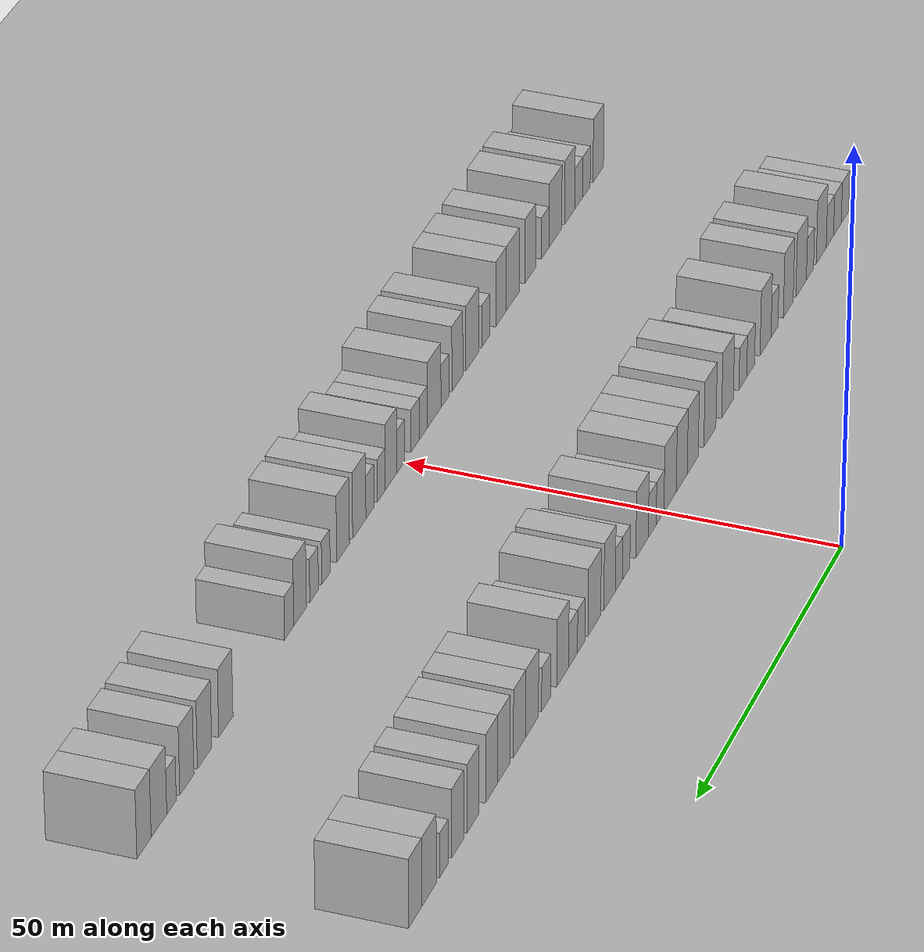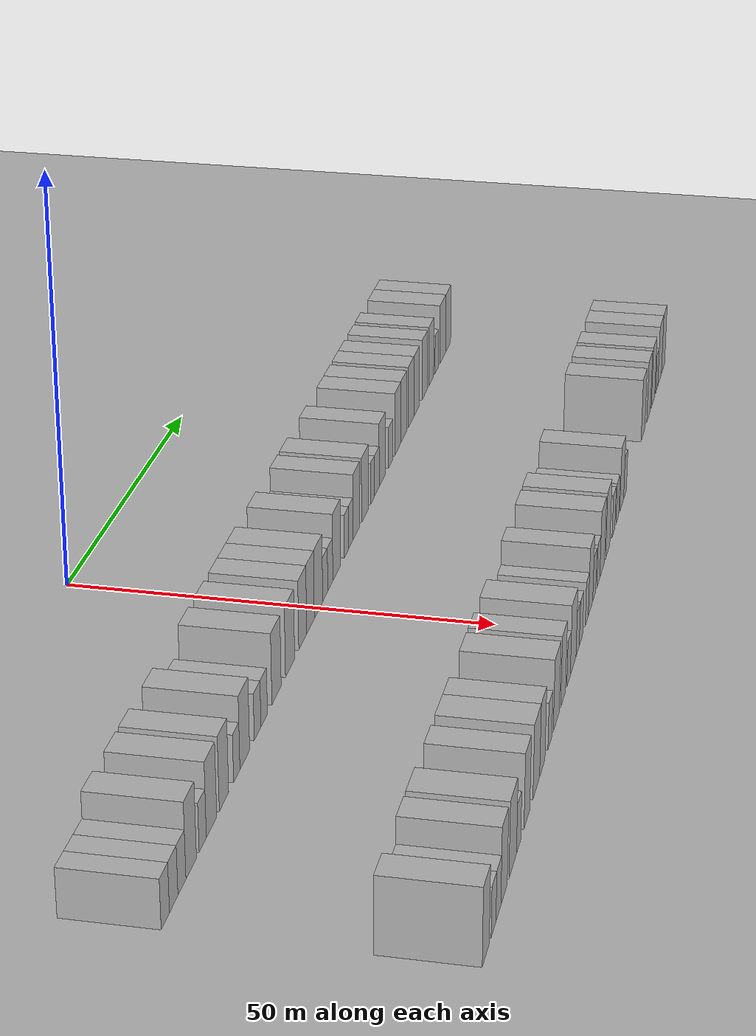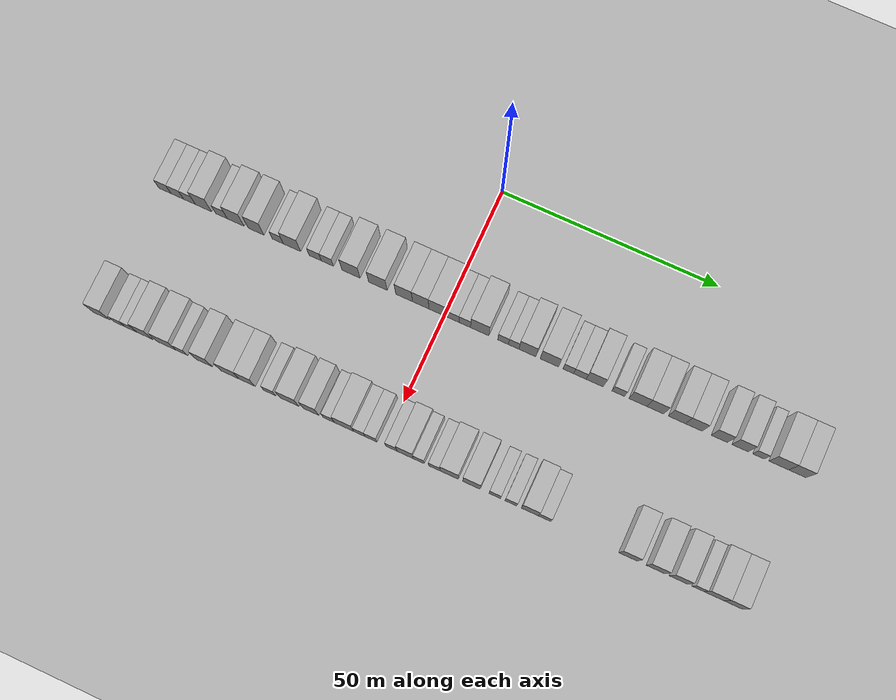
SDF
<sdf version="1.6">
 <world name="default">
  <include><name>ground_plane_1</name><uri>model://HANNAS_ground_plane</uri></include>
  <include>
   <name>ground_plane_2</name>
   <uri>model://HANNAS_ground_plane</uri>
   <pose>100 0 0  0 0 0</pose>
  </include>
  <model name="building_41">
   <static>1</static>
   <pose>25.0000 -65.6387 0 0.000000 0.000000 0.000000</pose>
   <link name="link">
    <pose>0 0 3.00 0 0 0</pose>
    <collision name="collision"><geometry><box><size>10.0000 2.8842 6.0000</size></box></geometry></collision>
    <visual name="visual">
     <cast_shadows>0</cast_shadows>
     <geometry><box><size>10.0000 2.8842 6.0000</size></box></geometry>
     <material>
      <script>
       <uri>model://HANNAS_wall/materials/scripts</uri>
       <uri>model://HANNAS_wall/materials/textures</uri>
       <name>vrc/HANNAS_wall</name>
      </script>
     </material>
    </visual>
   </link>
  </model>
  <model name="building_42">
   <static>1</static>
   <pose>25.0000 -62.7112 0 0.000000 0.000000 0.000000</pose>
   <link name="link">
    <pose>0 0 3.00 0 0 0</pose>
    <collision name="collision"><geometry><box><size>10.0000 2.9709 6.0000</size></box></geometry></collision>
    <visual name="visual">
     <cast_shadows>0</cast_shadows>
     <geometry><box><size>10.0000 2.9709 6.0000</size></box></geometry>
     <material>
      <script>
       <uri>model://HANNAS_wall/materials/scripts</uri>
       <uri>model://HANNAS_wall/materials/textures</uri>
       <name>vrc/HANNAS_wall</name>
      </script>
     </material>
    </visual>
   </link>
  </model>
  <model name="building_43">
   <static>1</static>
   <pose>25.0000 -59.8007 0 0.000000 0.000000 0.000000</pose>
   <link name="link">
    <pose>0 0 3.00 0 0 0</pose>
    <collision name="collision"><geometry><box><size>10.0000 2.8501 6.0000</size></box></geometry></collision>
    <visual name="visual">
     <cast_shadows>0</cast_shadows>
     <geometry><box><size>10.0000 2.8501 6.0000</size></box></geometry>
     <material>
      <script>
       <uri>model://HANNAS_wall/materials/scripts</uri>
       <uri>model://HANNAS_wall/materials/textures</uri>
       <name>vrc/HANNAS_wall</name>
      </script>
     </material>
    </visual>
   </link>
  </model>
  <model name="building_44">
   <static>1</static>
   <pose>25.0000 -56.4494 0 0.000000 0.000000 0.000000</pose>
   <link name="link">
    <pose>0 0 4.50 0 0 0</pose>
    <collision name="collision"><geometry><box><size>10.0000 3.8525 9.0000</size></box></geometry></collision>
    <visual name="visual">
     <cast_shadows>0</cast_shadows>
     <geometry><box><size>10.0000 3.8525 9.0000</size></box></geometry>
     <material>
      <script>
       <uri>model://HANNAS_wall/materials/scripts</uri>
       <uri>model://HANNAS_wall/materials/textures</uri>
       <name>vrc/HANNAS_wall</name>
      </script>
     </material>
    </visual>
   </link>
  </model>
  <model name="building_45">
   <static>1</static>
   <pose>25.0000 -52.1602 0 0.000000 0.000000 0.000000</pose>
   <link name="link">
    <pose>0 0 3.00 0 0 0</pose>
    <collision name="collision"><geometry><box><size>10.0000 2.7258 6.0000</size></box></geometry></collision>
    <visual name="visual">
     <cast_shadows>0</cast_shadows>
     <geometry><box><size>10.0000 2.7258 6.0000</size></box></geometry>
     <material>
      <script>
       <uri>model://HANNAS_wall/materials/scripts</uri>
       <uri>model://HANNAS_wall/materials/textures</uri>
       <name>vrc/HANNAS_wall</name>
      </script>
     </material>
    </visual>
   </link>
  </model>
  <model name="building_46">
   <static>1</static>
   <pose>25.0000 -48.8019 0 0.000000 0.000000 0.000000</pose>
   <link name="link">
    <pose>0 0 4.50 0 0 0</pose>
    <collision name="collision"><geometry><box><size>10.0000 3.9910 9.0000</size></box></geometry></collision>
    <visual name="visual">
     <cast_shadows>0</cast_shadows>
     <geometry><box><size>10.0000 3.9910 9.0000</size></box></geometry>
     <material>
      <script>
       <uri>model://HANNAS_wall/materials/scripts</uri>
       <uri>model://HANNAS_wall/materials/textures</uri>
       <name>vrc/HANNAS_wall</name>
      </script>
     </material>
    </visual>
   </link>
  </model>
  <model name="building_47">
   <static>1</static>
   <pose>25.0000 -43.9524 0 0.000000 0.000000 0.000000</pose>
   <link name="link">
    <pose>0 0 4.50 0 0 0</pose>
    <collision name="collision"><geometry><box><size>10.0000 3.7080 9.0000</size></box></geometry></collision>
    <visual name="visual">
     <cast_shadows>0</cast_shadows>
     <geometry><box><size>10.0000 3.7080 9.0000</size></box></geometry>
     <material>
      <script>
       <uri>model://HANNAS_wall/materials/scripts</uri>
       <uri>model://HANNAS_wall/materials/textures</uri>
       <name>vrc/HANNAS_wall</name>
      </script>
     </material>
    </visual>
   </link>
  </model>
  <model name="building_48">
   <static>1</static>
   <pose>25.0000 -38.8013 0 0.000000 0.000000 0.000000</pose>
   <link name="link">
    <pose>0 0 3.00 0 0 0</pose>
    <collision name="collision"><geometry><box><size>10.0000 2.5941 6.0000</size></box></geometry></collision>
    <visual name="visual">
     <cast_shadows>0</cast_shadows>
     <geometry><box><size>10.0000 2.5941 6.0000</size></box></geometry>
     <material>
      <script>
       <uri>model://HANNAS_wall/materials/scripts</uri>
       <uri>model://HANNAS_wall/materials/textures</uri>
       <name>vrc/HANNAS_wall</name>
      </script>
     </material>
    </visual>
   </link>
  </model>
  <model name="building_49">
   <static>1</static>
   <pose>25.0000 -35.4844 0 0.000000 0.000000 0.000000</pose>
   <link name="link">
    <pose>0 0 4.50 0 0 0</pose>
    <collision name="collision"><geometry><box><size>10.0000 4.0397 9.0000</size></box></geometry></collision>
    <visual name="visual">
     <cast_shadows>0</cast_shadows>
     <geometry><box><size>10.0000 4.0397 9.0000</size></box></geometry>
     <material>
      <script>
       <uri>model://HANNAS_wall/materials/scripts</uri>
       <uri>model://HANNAS_wall/materials/textures</uri>
       <name>vrc/HANNAS_wall</name>
      </script>
     </material>
    </visual>
   </link>
  </model>
  <model name="building_50">
   <static>1</static>
   <pose>25.0000 -30.0270 0 0.000000 0.000000 0.000000</pose>
   <link name="link">
    <pose>0 0 3.00 0 0 0</pose>
    <collision name="collision"><geometry><box><size>10.0000 2.8750 6.0000</size></box></geometry></collision>
    <visual name="visual">
     <cast_shadows>0</cast_shadows>
     <geometry><box><size>10.0000 2.8750 6.0000</size></box></geometry>
     <material>
      <script>
       <uri>model://HANNAS_wall/materials/scripts</uri>
       <uri>model://HANNAS_wall/materials/textures</uri>
       <name>vrc/HANNAS_wall</name>
      </script>
     </material>
    </visual>
   </link>
  </model>
  <model name="building_51">
   <static>1</static>
   <pose>25.0000 -27.1659 0 0.000000 0.000000 0.000000</pose>
   <link name="link">
    <pose>0 0 3.00 0 0 0</pose>
    <collision name="collision"><geometry><box><size>10.0000 2.8471 6.0000</size></box></geometry></collision>
    <visual name="visual">
     <cast_shadows>0</cast_shadows>
     <geometry><box><size>10.0000 2.8471 6.0000</size></box></geometry>
     <material>
      <script>
       <uri>model://HANNAS_wall/materials/scripts</uri>
       <uri>model://HANNAS_wall/materials/textures</uri>
       <name>vrc/HANNAS_wall</name>
      </script>
     </material>
    </visual>
   </link>
  </model>
  <model name="building_52">
   <static>1</static>
   <pose>25.0000 -21.6329 0 0.000000 0.000000 0.000000</pose>
   <link name="link">
    <pose>0 0 4.50 0 0 0</pose>
    <collision name="collision"><geometry><box><size>10.0000 4.2190 9.0000</size></box></geometry></collision>
    <visual name="visual">
     <cast_shadows>0</cast_shadows>
     <geometry><box><size>10.0000 4.2190 9.0000</size></box></geometry>
     <material>
      <script>
       <uri>model://HANNAS_wall/materials/scripts</uri>
       <uri>model://HANNAS_wall/materials/textures</uri>
       <name>vrc/HANNAS_wall</name>
      </script>
     </material>
    </visual>
   </link>
  </model>
  <model name="building_53">
   <static>1</static>
   <pose>25.0000 -15.3646 0 0.000000 0.000000 0.000000</pose>
   <link name="link">
    <pose>0 0 4.50 0 0 0</pose>
    <collision name="collision"><geometry><box><size>10.0000 4.3175 9.0000</size></box></geometry></collision>
    <visual name="visual">
     <cast_shadows>0</cast_shadows>
     <geometry><box><size>10.0000 4.3175 9.0000</size></box></geometry>
     <material>
      <script>
       <uri>model://HANNAS_wall/materials/scripts</uri>
       <uri>model://HANNAS_wall/materials/textures</uri>
       <name>vrc/HANNAS_wall</name>
      </script>
     </material>
    </visual>
   </link>
  </model>
  <model name="building_54">
   <static>1</static>
   <pose>25.0000 -9.2724 0 0.000000 0.000000 0.000000</pose>
   <link name="link">
    <pose>0 0 4.50 0 0 0</pose>
    <collision name="collision"><geometry><box><size>10.0000 3.8670 9.0000</size></box></geometry></collision>
    <visual name="visual">
     <cast_shadows>0</cast_shadows>
     <geometry><box><size>10.0000 3.8670 9.0000</size></box></geometry>
     <material>
      <script>
       <uri>model://HANNAS_wall/materials/scripts</uri>
       <uri>model://HANNAS_wall/materials/textures</uri>
       <name>vrc/HANNAS_wall</name>
      </script>
     </material>
    </visual>
   </link>
  </model>
  <model name="building_55">
   <static>1</static>
   <pose>25.0000 -5.4303 0 0.000000 0.000000 0.000000</pose>
   <link name="link">
    <pose>0 0 4.50 0 0 0</pose>
    <collision name="collision"><geometry><box><size>10.0000 3.8172 9.0000</size></box></geometry></collision>
    <visual name="visual">
     <cast_shadows>0</cast_shadows>
     <geometry><box><size>10.0000 3.8172 9.0000</size></box></geometry>
     <material>
      <script>
       <uri>model://HANNAS_wall/materials/scripts</uri>
       <uri>model://HANNAS_wall/materials/textures</uri>
       <name>vrc/HANNAS_wall</name>
      </script>
     </material>
    </visual>
   </link>
  </model>
  <model name="building_56">
   <static>1</static>
   <pose>25.0000 -1.3966 0 0.000000 0.000000 0.000000</pose>
   <link name="link">
    <pose>0 0 4.50 0 0 0</pose>
    <collision name="collision"><geometry><box><size>10.0000 4.2502 9.0000</size></box></geometry></collision>
    <visual name="visual">
     <cast_shadows>0</cast_shadows>
     <geometry><box><size>10.0000 4.2502 9.0000</size></box></geometry>
     <material>
      <script>
       <uri>model://HANNAS_wall/materials/scripts</uri>
       <uri>model://HANNAS_wall/materials/textures</uri>
       <name>vrc/HANNAS_wall</name>
      </script>
     </material>
    </visual>
   </link>
  </model>
  <model name="building_57">
   <static>1</static>
   <pose>25.0000 2.0539 0 0.000000 0.000000 0.000000</pose>
   <link name="link">
    <pose>0 0 3.00 0 0 0</pose>
    <collision name="collision"><geometry><box><size>10.0000 2.6509 6.0000</size></box></geometry></collision>
    <visual name="visual">
     <cast_shadows>0</cast_shadows>
     <geometry><box><size>10.0000 2.6509 6.0000</size></box></geometry>
     <material>
      <script>
       <uri>model://HANNAS_wall/materials/scripts</uri>
       <uri>model://HANNAS_wall/materials/textures</uri>
       <name>vrc/HANNAS_wall</name>
      </script>
     </material>
    </visual>
   </link>
  </model>
  <model name="building_58">
   <static>1</static>
   <pose>25.0000 4.7348 0 0.000000 0.000000 0.000000</pose>
   <link name="link">
    <pose>0 0 3.00 0 0 0</pose>
    <collision name="collision"><geometry><box><size>10.0000 2.7110 6.0000</size></box></geometry></collision>
    <visual name="visual">
     <cast_shadows>0</cast_shadows>
     <geometry><box><size>10.0000 2.7110 6.0000</size></box></geometry>
     <material>
      <script>
       <uri>model://HANNAS_wall/materials/scripts</uri>
       <uri>model://HANNAS_wall/materials/textures</uri>
       <name>vrc/HANNAS_wall</name>
      </script>
     </material>
    </visual>
   </link>
  </model>
  <model name="building_59">
   <static>1</static>
   <pose>25.0000 8.2013 0 0.000000 0.000000 0.000000</pose>
   <link name="link">
    <pose>0 0 4.50 0 0 0</pose>
    <collision name="collision"><geometry><box><size>10.0000 4.2220 9.0000</size></box></geometry></collision>
    <visual name="visual">
     <cast_shadows>0</cast_shadows>
     <geometry><box><size>10.0000 4.2220 9.0000</size></box></geometry>
     <material>
      <script>
       <uri>model://HANNAS_wall/materials/scripts</uri>
       <uri>model://HANNAS_wall/materials/textures</uri>
       <name>vrc/HANNAS_wall</name>
      </script>
     </material>
    </visual>
   </link>
  </model>
  <model name="building_60">
   <static>1</static>
   <pose>25.0000 13.5528 0 0.000000 0.000000 0.000000</pose>
   <link name="link">
    <pose>0 0 3.00 0 0 0</pose>
    <collision name="collision"><geometry><box><size>10.0000 2.4810 6.0000</size></box></geometry></collision>
    <visual name="visual">
     <cast_shadows>0</cast_shadows>
     <geometry><box><size>10.0000 2.4810 6.0000</size></box></geometry>
     <material>
      <script>
       <uri>model://HANNAS_wall/materials/scripts</uri>
       <uri>model://HANNAS_wall/materials/textures</uri>
       <name>vrc/HANNAS_wall</name>
      </script>
     </material>
    </visual>
   </link>
  </model>
  <model name="building_61">
   <static>1</static>
   <pose>25.0000 15.9937 0 0.000000 0.000000 0.000000</pose>
   <link name="link">
    <pose>0 0 3.00 0 0 0</pose>
    <collision name="collision"><geometry><box><size>10.0000 2.4008 6.0000</size></box></geometry></collision>
    <visual name="visual">
     <cast_shadows>0</cast_shadows>
     <geometry><box><size>10.0000 2.4008 6.0000</size></box></geometry>
     <material>
      <script>
       <uri>model://HANNAS_wall/materials/scripts</uri>
       <uri>model://HANNAS_wall/materials/textures</uri>
       <name>vrc/HANNAS_wall</name>
      </script>
     </material>
    </visual>
   </link>
  </model>
  <model name="building_62">
   <static>1</static>
   <pose>25.0000 19.1128 0 0.000000 0.000000 0.000000</pose>
   <link name="link">
    <pose>0 0 4.50 0 0 0</pose>
    <collision name="collision"><geometry><box><size>10.0000 3.8374 9.0000</size></box></geometry></collision>
    <visual name="visual">
     <cast_shadows>0</cast_shadows>
     <geometry><box><size>10.0000 3.8374 9.0000</size></box></geometry>
     <material>
      <script>
       <uri>model://HANNAS_wall/materials/scripts</uri>
       <uri>model://HANNAS_wall/materials/textures</uri>
       <name>vrc/HANNAS_wall</name>
      </script>
     </material>
    </visual>
   </link>
  </model>
  <model name="building_63">
   <static>1</static>
   <pose>25.0000 24.1351 0 0.000000 0.000000 0.000000</pose>
   <link name="link">
    <pose>0 0 4.50 0 0 0</pose>
    <collision name="collision"><geometry><box><size>10.0000 4.2073 9.0000</size></box></geometry></collision>
    <visual name="visual">
     <cast_shadows>0</cast_shadows>
     <geometry><box><size>10.0000 4.2073 9.0000</size></box></geometry>
     <material>
      <script>
       <uri>model://HANNAS_wall/materials/scripts</uri>
       <uri>model://HANNAS_wall/materials/textures</uri>
       <name>vrc/HANNAS_wall</name>
      </script>
     </material>
    </visual>
   </link>
  </model>
  <model name="building_64">
   <static>1</static>
   <pose>25.0000 28.4493 0 0.000000 0.000000 0.000000</pose>
   <link name="link">
    <pose>0 0 3.00 0 0 0</pose>
    <collision name="collision"><geometry><box><size>10.0000 2.4211 6.0000</size></box></geometry></collision>
    <visual name="visual">
     <cast_shadows>0</cast_shadows>
     <geometry><box><size>10.0000 2.4211 6.0000</size></box></geometry>
     <material>
      <script>
       <uri>model://HANNAS_wall/materials/scripts</uri>
       <uri>model://HANNAS_wall/materials/textures</uri>
       <name>vrc/HANNAS_wall</name>
      </script>
     </material>
    </visual>
   </link>
  </model>
  <model name="building_65">
   <static>1</static>
   <pose>25.0000 31.0867 0 0.000000 0.000000 0.000000</pose>
   <link name="link">
    <pose>0 0 3.00 0 0 0</pose>
    <collision name="collision"><geometry><box><size>10.0000 2.8536 6.0000</size></box></geometry></collision>
    <visual name="visual">
     <cast_shadows>0</cast_shadows>
     <geometry><box><size>10.0000 2.8536 6.0000</size></box></geometry>
     <material>
      <script>
       <uri>model://HANNAS_wall/materials/scripts</uri>
       <uri>model://HANNAS_wall/materials/textures</uri>
       <name>vrc/HANNAS_wall</name>
      </script>
     </material>
    </visual>
   </link>
  </model>
  <model name="building_66">
   <static>1</static>
   <pose>25.0000 34.4329 0 0.000000 0.000000 0.000000</pose>
   <link name="link">
    <pose>0 0 4.50 0 0 0</pose>
    <collision name="collision"><geometry><box><size>10.0000 3.8389 9.0000</size></box></geometry></collision>
    <visual name="visual">
     <cast_shadows>0</cast_shadows>
     <geometry><box><size>10.0000 3.8389 9.0000</size></box></geometry>
     <material>
      <script>
       <uri>model://HANNAS_wall/materials/scripts</uri>
       <uri>model://HANNAS_wall/materials/textures</uri>
       <name>vrc/HANNAS_wall</name>
      </script>
     </material>
    </visual>
   </link>
  </model>
  <model name="building_67">
   <static>1</static>
   <pose>25.0000 39.7731 0 0.000000 0.000000 0.000000</pose>
   <link name="link">
    <pose>0 0 3.00 0 0 0</pose>
    <collision name="collision"><geometry><box><size>10.0000 2.8414 6.0000</size></box></geometry></collision>
    <visual name="visual">
     <cast_shadows>0</cast_shadows>
     <geometry><box><size>10.0000 2.8414 6.0000</size></box></geometry>
     <material>
      <script>
       <uri>model://HANNAS_wall/materials/scripts</uri>
       <uri>model://HANNAS_wall/materials/textures</uri>
       <name>vrc/HANNAS_wall</name>
      </script>
     </material>
    </visual>
   </link>
  </model>
  <model name="building_68">
   <static>1</static>
   <pose>25.0000 44.2026 0 0.000000 0.000000 0.000000</pose>
   <link name="link">
    <pose>0 0 4.50 0 0 0</pose>
    <collision name="collision"><geometry><box><size>10.0000 4.0176 9.0000</size></box></geometry></collision>
    <visual name="visual">
     <cast_shadows>0</cast_shadows>
     <geometry><box><size>10.0000 4.0176 9.0000</size></box></geometry>
     <material>
      <script>
       <uri>model://HANNAS_wall/materials/scripts</uri>
       <uri>model://HANNAS_wall/materials/textures</uri>
       <name>vrc/HANNAS_wall</name>
      </script>
     </material>
    </visual>
   </link>
  </model>
  <model name="building_69">
   <static>1</static>
   <pose>25.0000 48.1351 0 0.000000 0.000000 0.000000</pose>
   <link name="link">
    <pose>0 0 4.50 0 0 0</pose>
    <collision name="collision"><geometry><box><size>10.0000 3.8475 9.0000</size></box></geometry></collision>
    <visual name="visual">
     <cast_shadows>0</cast_shadows>
     <geometry><box><size>10.0000 3.8475 9.0000</size></box></geometry>
     <material>
      <script>
       <uri>model://HANNAS_wall/materials/scripts</uri>
       <uri>model://HANNAS_wall/materials/textures</uri>
       <name>vrc/HANNAS_wall</name>
      </script>
     </material>
    </visual>
   </link>
  </model>
  <model name="building_70">
   <static>1</static>
   <pose>25.0000 52.9887 0 0.000000 0.000000 0.000000</pose>
   <link name="link">
    <pose>0 0 4.50 0 0 0</pose>
    <collision name="collision"><geometry><box><size>10.0000 3.8597 9.0000</size></box></geometry></collision>
    <visual name="visual">
     <cast_shadows>0</cast_shadows>
     <geometry><box><size>10.0000 3.8597 9.0000</size></box></geometry>
     <material>
      <script>
       <uri>model://HANNAS_wall/materials/scripts</uri>
       <uri>model://HANNAS_wall/materials/textures</uri>
       <name>vrc/HANNAS_wall</name>
      </script>
     </material>
    </visual>
   </link>
  </model>
  <model name="building_71">
   <static>1</static>
   <pose>25.0000 56.7970 0 0.000000 0.000000 0.000000</pose>
   <link name="link">
    <pose>0 0 4.50 0 0 0</pose>
    <collision name="collision"><geometry><box><size>10.0000 3.7568 9.0000</size></box></geometry></collision>
    <visual name="visual">
     <cast_shadows>0</cast_shadows>
     <geometry><box><size>10.0000 3.7568 9.0000</size></box></geometry>
     <material>
      <script>
       <uri>model://HANNAS_wall/materials/scripts</uri>
       <uri>model://HANNAS_wall/materials/textures</uri>
       <name>vrc/HANNAS_wall</name>
      </script>
     </material>
    </visual>
   </link>
  </model>
  <model name="building_72">
   <static>1</static>
   <pose>25.0000 62.4924 0 0.000000 0.000000 0.000000</pose>
   <link name="link">
    <pose>0 0 4.50 0 0 0</pose>
    <collision name="collision"><geometry><box><size>10.0000 3.6340 9.0000</size></box></geometry></collision>
    <visual name="visual">
     <cast_shadows>0</cast_shadows>
     <geometry><box><size>10.0000 3.6340 9.0000</size></box></geometry>
     <material>
      <script>
       <uri>model://HANNAS_wall/materials/scripts</uri>
       <uri>model://HANNAS_wall/materials/textures</uri>
       <name>vrc/HANNAS_wall</name>
      </script>
     </material>
    </visual>
   </link>
  </model>
  <model name="building_73">
   <static>1</static>
   <pose>25.0000 67.1147 0 0.000000 0.000000 0.000000</pose>
   <link name="link">
    <pose>0 0 4.50 0 0 0</pose>
    <collision name="collision"><geometry><box><size>10.0000 3.6105 9.0000</size></box></geometry></collision>
    <visual name="visual">
     <cast_shadows>0</cast_shadows>
     <geometry><box><size>10.0000 3.6105 9.0000</size></box></geometry>
     <material>
      <script>
       <uri>model://HANNAS_wall/materials/scripts</uri>
       <uri>model://HANNAS_wall/materials/textures</uri>
       <name>vrc/HANNAS_wall</name>
      </script>
     </material>
    </visual>
   </link>
  </model>
  <model name="building_74">
   <static>1</static>
   <pose>25.0000 71.2161 0 0.000000 0.000000 0.000000</pose>
   <link name="link">
    <pose>0 0 3.00 0 0 0</pose>
    <collision name="collision"><geometry><box><size>10.0000 2.5922 6.0000</size></box></geometry></collision>
    <visual name="visual">
     <cast_shadows>0</cast_shadows>
     <geometry><box><size>10.0000 2.5922 6.0000</size></box></geometry>
     <material>
      <script>
       <uri>model://HANNAS_wall/materials/scripts</uri>
       <uri>model://HANNAS_wall/materials/textures</uri>
       <name>vrc/HANNAS_wall</name>
      </script>
     </material>
    </visual>
   </link>
  </model>
  <model name="building_75">
   <static>1</static>
   <pose>25.0000 75.6909 0 0.000000 0.000000 0.000000</pose>
   <link name="link">
    <pose>0 0 4.50 0 0 0</pose>
    <collision name="collision"><geometry><box><size>10.0000 4.3574 9.0000</size></box></geometry></collision>
    <visual name="visual">
     <cast_shadows>0</cast_shadows>
     <geometry><box><size>10.0000 4.3574 9.0000</size></box></geometry>
     <material>
      <script>
       <uri>model://HANNAS_wall/materials/scripts</uri>
       <uri>model://HANNAS_wall/materials/textures</uri>
       <name>vrc/HANNAS_wall</name>
      </script>
     </material>
    </visual>
   </link>
  </model>
  <model name="building_76">
   <static>1</static>
   <pose>25.0000 79.7905 0 0.000000 0.000000 0.000000</pose>
   <link name="link">
    <pose>0 0 4.50 0 0 0</pose>
    <collision name="collision"><geometry><box><size>10.0000 3.8419 9.0000</size></box></geometry></collision>
    <visual name="visual">
     <cast_shadows>0</cast_shadows>
     <geometry><box><size>10.0000 3.8419 9.0000</size></box></geometry>
     <material>
      <script>
       <uri>model://HANNAS_wall/materials/scripts</uri>
       <uri>model://HANNAS_wall/materials/textures</uri>
       <name>vrc/HANNAS_wall</name>
      </script>
     </material>
    </visual>
   </link>
  </model>
  <model name="building_138">
   <static>1</static>
   <pose>55.0000 -65.3005 0 0.000000 0.000000 0.000000</pose>
   <link name="link">
    <pose>0 0 4.50 0 0 0</pose>
    <collision name="collision"><geometry><box><size>10.0000 3.8101 9.0000</size></box></geometry></collision>
    <visual name="visual">
     <cast_shadows>0</cast_shadows>
     <geometry><box><size>10.0000 3.8101 9.0000</size></box></geometry>
     <material>
      <script>
       <uri>model://HANNAS_wall/materials/scripts</uri>
       <uri>model://HANNAS_wall/materials/textures</uri>
       <name>vrc/HANNAS_wall</name>
      </script>
     </material>
    </visual>
   </link>
  </model>
  <model name="building_139">
   <static>1</static>
   <pose>55.0000 -61.0559 0 0.000000 0.000000 0.000000</pose>
   <link name="link">
    <pose>0 0 3.00 0 0 0</pose>
    <collision name="collision"><geometry><box><size>10.0000 2.6791 6.0000</size></box></geometry></collision>
    <visual name="visual">
     <cast_shadows>0</cast_shadows>
     <geometry><box><size>10.0000 2.6791 6.0000</size></box></geometry>
     <material>
      <script>
       <uri>model://HANNAS_wall/materials/scripts</uri>
       <uri>model://HANNAS_wall/materials/textures</uri>
       <name>vrc/HANNAS_wall</name>
      </script>
     </material>
    </visual>
   </link>
  </model>
  <model name="building_140">
   <static>1</static>
   <pose>55.0000 -58.3155 0 0.000000 0.000000 0.000000</pose>
   <link name="link">
    <pose>0 0 3.00 0 0 0</pose>
    <collision name="collision"><geometry><box><size>10.0000 2.8017 6.0000</size></box></geometry></collision>
    <visual name="visual">
     <cast_shadows>0</cast_shadows>
     <geometry><box><size>10.0000 2.8017 6.0000</size></box></geometry>
     <material>
      <script>
       <uri>model://HANNAS_wall/materials/scripts</uri>
       <uri>model://HANNAS_wall/materials/textures</uri>
       <name>vrc/HANNAS_wall</name>
      </script>
     </material>
    </visual>
   </link>
  </model>
  <model name="building_141">
   <static>1</static>
   <pose>55.0000 -55.0796 0 0.000000 0.000000 0.000000</pose>
   <link name="link">
    <pose>0 0 4.50 0 0 0</pose>
    <collision name="collision"><geometry><box><size>10.0000 3.6702 9.0000</size></box></geometry></collision>
    <visual name="visual">
     <cast_shadows>0</cast_shadows>
     <geometry><box><size>10.0000 3.6702 9.0000</size></box></geometry>
     <material>
      <script>
       <uri>model://HANNAS_wall/materials/scripts</uri>
       <uri>model://HANNAS_wall/materials/textures</uri>
       <name>vrc/HANNAS_wall</name>
      </script>
     </material>
    </visual>
   </link>
  </model>
  <model name="building_142">
   <static>1</static>
   <pose>55.0000 -49.9966 0 0.000000 0.000000 0.000000</pose>
   <link name="link">
    <pose>0 0 4.50 0 0 0</pose>
    <collision name="collision"><geometry><box><size>10.0000 4.4959 9.0000</size></box></geometry></collision>
    <visual name="visual">
     <cast_shadows>0</cast_shadows>
     <geometry><box><size>10.0000 4.4959 9.0000</size></box></geometry>
     <material>
      <script>
       <uri>model://HANNAS_wall/materials/scripts</uri>
       <uri>model://HANNAS_wall/materials/textures</uri>
       <name>vrc/HANNAS_wall</name>
      </script>
     </material>
    </visual>
   </link>
  </model>
  <model name="building_143">
   <static>1</static>
   <pose>55.0000 -46.4349 0 0.000000 0.000000 0.000000</pose>
   <link name="link">
    <pose>0 0 3.00 0 0 0</pose>
    <collision name="collision"><geometry><box><size>10.0000 2.6275 6.0000</size></box></geometry></collision>
    <visual name="visual">
     <cast_shadows>0</cast_shadows>
     <geometry><box><size>10.0000 2.6275 6.0000</size></box></geometry>
     <material>
      <script>
       <uri>model://HANNAS_wall/materials/scripts</uri>
       <uri>model://HANNAS_wall/materials/textures</uri>
       <name>vrc/HANNAS_wall</name>
      </script>
     </material>
    </visual>
   </link>
  </model>
  <model name="building_144">
   <static>1</static>
   <pose>55.0000 -41.2685 0 0.000000 0.000000 0.000000</pose>
   <link name="link">
    <pose>0 0 4.50 0 0 0</pose>
    <collision name="collision"><geometry><box><size>10.0000 3.7052 9.0000</size></box></geometry></collision>
    <visual name="visual">
     <cast_shadows>0</cast_shadows>
     <geometry><box><size>10.0000 3.7052 9.0000</size></box></geometry>
     <material>
      <script>
       <uri>model://HANNAS_wall/materials/scripts</uri>
       <uri>model://HANNAS_wall/materials/textures</uri>
       <name>vrc/HANNAS_wall</name>
      </script>
     </material>
    </visual>
   </link>
  </model>
  <model name="building_145">
   <static>1</static>
   <pose>55.0000 -35.2074 0 0.000000 0.000000 0.000000</pose>
   <link name="link">
    <pose>0 0 4.50 0 0 0</pose>
    <collision name="collision"><geometry><box><size>10.0000 4.4169 9.0000</size></box></geometry></collision>
    <visual name="visual">
     <cast_shadows>0</cast_shadows>
     <geometry><box><size>10.0000 4.4169 9.0000</size></box></geometry>
     <material>
      <script>
       <uri>model://HANNAS_wall/materials/scripts</uri>
       <uri>model://HANNAS_wall/materials/textures</uri>
       <name>vrc/HANNAS_wall</name>
      </script>
     </material>
    </visual>
   </link>
  </model>
  <model name="building_146">
   <static>1</static>
   <pose>55.0000 -31.1978 0 0.000000 0.000000 0.000000</pose>
   <link name="link">
    <pose>0 0 4.50 0 0 0</pose>
    <collision name="collision"><geometry><box><size>10.0000 3.6024 9.0000</size></box></geometry></collision>
    <visual name="visual">
     <cast_shadows>0</cast_shadows>
     <geometry><box><size>10.0000 3.6024 9.0000</size></box></geometry>
     <material>
      <script>
       <uri>model://HANNAS_wall/materials/scripts</uri>
       <uri>model://HANNAS_wall/materials/textures</uri>
       <name>vrc/HANNAS_wall</name>
      </script>
     </material>
    </visual>
   </link>
  </model>
  <model name="building_147">
   <static>1</static>
   <pose>55.0000 -26.0145 0 0.000000 0.000000 0.000000</pose>
   <link name="link">
    <pose>0 0 3.00 0 0 0</pose>
    <collision name="collision"><geometry><box><size>10.0000 2.7642 6.0000</size></box></geometry></collision>
    <visual name="visual">
     <cast_shadows>0</cast_shadows>
     <geometry><box><size>10.0000 2.7642 6.0000</size></box></geometry>
     <material>
      <script>
       <uri>model://HANNAS_wall/materials/scripts</uri>
       <uri>model://HANNAS_wall/materials/textures</uri>
       <name>vrc/HANNAS_wall</name>
      </script>
     </material>
    </visual>
   </link>
  </model>
  <model name="building_148">
   <static>1</static>
   <pose>55.0000 -21.4976 0 0.000000 0.000000 0.000000</pose>
   <link name="link">
    <pose>0 0 4.50 0 0 0</pose>
    <collision name="collision"><geometry><box><size>10.0000 4.2696 9.0000</size></box></geometry></collision>
    <visual name="visual">
     <cast_shadows>0</cast_shadows>
     <geometry><box><size>10.0000 4.2696 9.0000</size></box></geometry>
     <material>
      <script>
       <uri>model://HANNAS_wall/materials/scripts</uri>
       <uri>model://HANNAS_wall/materials/textures</uri>
       <name>vrc/HANNAS_wall</name>
      </script>
     </material>
    </visual>
   </link>
  </model>
  <model name="building_149">
   <static>1</static>
   <pose>55.0000 -16.5601 0 0.000000 0.000000 0.000000</pose>
   <link name="link">
    <pose>0 0 4.50 0 0 0</pose>
    <collision name="collision"><geometry><box><size>10.0000 3.6055 9.0000</size></box></geometry></collision>
    <visual name="visual">
     <cast_shadows>0</cast_shadows>
     <geometry><box><size>10.0000 3.6055 9.0000</size></box></geometry>
     <material>
      <script>
       <uri>model://HANNAS_wall/materials/scripts</uri>
       <uri>model://HANNAS_wall/materials/textures</uri>
       <name>vrc/HANNAS_wall</name>
      </script>
     </material>
    </visual>
   </link>
  </model>
  <model name="building_150">
   <static>1</static>
   <pose>55.0000 -12.4582 0 0.000000 0.000000 0.000000</pose>
   <link name="link">
    <pose>0 0 3.00 0 0 0</pose>
    <collision name="collision"><geometry><box><size>10.0000 2.5982 6.0000</size></box></geometry></collision>
    <visual name="visual">
     <cast_shadows>0</cast_shadows>
     <geometry><box><size>10.0000 2.5982 6.0000</size></box></geometry>
     <material>
      <script>
       <uri>model://HANNAS_wall/materials/scripts</uri>
       <uri>model://HANNAS_wall/materials/textures</uri>
       <name>vrc/HANNAS_wall</name>
      </script>
     </material>
    </visual>
   </link>
  </model>
  <model name="building_151">
   <static>1</static>
   <pose>55.0000 -8.9598 0 0.000000 0.000000 0.000000</pose>
   <link name="link">
    <pose>0 0 4.50 0 0 0</pose>
    <collision name="collision"><geometry><box><size>10.0000 4.3986 9.0000</size></box></geometry></collision>
    <visual name="visual">
     <cast_shadows>0</cast_shadows>
     <geometry><box><size>10.0000 4.3986 9.0000</size></box></geometry>
     <material>
      <script>
       <uri>model://HANNAS_wall/materials/scripts</uri>
       <uri>model://HANNAS_wall/materials/textures</uri>
       <name>vrc/HANNAS_wall</name>
      </script>
     </material>
    </visual>
   </link>
  </model>
  <model name="building_152">
   <static>1</static>
   <pose>55.0000 -5.4747 0 0.000000 0.000000 0.000000</pose>
   <link name="link">
    <pose>0 0 3.00 0 0 0</pose>
    <collision name="collision"><geometry><box><size>10.0000 2.5716 6.0000</size></box></geometry></collision>
    <visual name="visual">
     <cast_shadows>0</cast_shadows>
     <geometry><box><size>10.0000 2.5716 6.0000</size></box></geometry>
     <material>
      <script>
       <uri>model://HANNAS_wall/materials/scripts</uri>
       <uri>model://HANNAS_wall/materials/textures</uri>
       <name>vrc/HANNAS_wall</name>
      </script>
     </material>
    </visual>
   </link>
  </model>
  <model name="building_153">
   <static>1</static>
   <pose>55.0000 -2.8188 0 0.000000 0.000000 0.000000</pose>
   <link name="link">
    <pose>0 0 3.00 0 0 0</pose>
    <collision name="collision"><geometry><box><size>10.0000 2.7401 6.0000</size></box></geometry></collision>
    <visual name="visual">
     <cast_shadows>0</cast_shadows>
     <geometry><box><size>10.0000 2.7401 6.0000</size></box></geometry>
     <material>
      <script>
       <uri>model://HANNAS_wall/materials/scripts</uri>
       <uri>model://HANNAS_wall/materials/textures</uri>
       <name>vrc/HANNAS_wall</name>
      </script>
     </material>
    </visual>
   </link>
  </model>
  <model name="building_154">
   <static>1</static>
   <pose>55.0000 1.8359 0 0.000000 0.000000 0.000000</pose>
   <link name="link">
    <pose>0 0 3.00 0 0 0</pose>
    <collision name="collision"><geometry><box><size>10.0000 2.5693 6.0000</size></box></geometry></collision>
    <visual name="visual">
     <cast_shadows>0</cast_shadows>
     <geometry><box><size>10.0000 2.5693 6.0000</size></box></geometry>
     <material>
      <script>
       <uri>model://HANNAS_wall/materials/scripts</uri>
       <uri>model://HANNAS_wall/materials/textures</uri>
       <name>vrc/HANNAS_wall</name>
      </script>
     </material>
    </visual>
   </link>
  </model>
  <model name="building_155">
   <static>1</static>
   <pose>55.0000 4.9570 0 0.000000 0.000000 0.000000</pose>
   <link name="link">
    <pose>0 0 4.50 0 0 0</pose>
    <collision name="collision"><geometry><box><size>10.0000 3.6729 9.0000</size></box></geometry></collision>
    <visual name="visual">
     <cast_shadows>0</cast_shadows>
     <geometry><box><size>10.0000 3.6729 9.0000</size></box></geometry>
     <material>
      <script>
       <uri>model://HANNAS_wall/materials/scripts</uri>
       <uri>model://HANNAS_wall/materials/textures</uri>
       <name>vrc/HANNAS_wall</name>
      </script>
     </material>
    </visual>
   </link>
  </model>
  <model name="building_156">
   <static>1</static>
   <pose>55.0000 8.0390 0 0.000000 0.000000 0.000000</pose>
   <link name="link">
    <pose>0 0 3.00 0 0 0</pose>
    <collision name="collision"><geometry><box><size>10.0000 2.4911 6.0000</size></box></geometry></collision>
    <visual name="visual">
     <cast_shadows>0</cast_shadows>
     <geometry><box><size>10.0000 2.4911 6.0000</size></box></geometry>
     <material>
      <script>
       <uri>model://HANNAS_wall/materials/scripts</uri>
       <uri>model://HANNAS_wall/materials/textures</uri>
       <name>vrc/HANNAS_wall</name>
      </script>
     </material>
    </visual>
   </link>
  </model>
  <model name="building_157">
   <static>1</static>
   <pose>55.0000 11.5645 0 0.000000 0.000000 0.000000</pose>
   <link name="link">
    <pose>0 0 3.00 0 0 0</pose>
    <collision name="collision"><geometry><box><size>10.0000 2.5598 6.0000</size></box></geometry></collision>
    <visual name="visual">
     <cast_shadows>0</cast_shadows>
     <geometry><box><size>10.0000 2.5598 6.0000</size></box></geometry>
     <material>
      <script>
       <uri>model://HANNAS_wall/materials/scripts</uri>
       <uri>model://HANNAS_wall/materials/textures</uri>
       <name>vrc/HANNAS_wall</name>
      </script>
     </material>
    </visual>
   </link>
  </model>
  <model name="building_158">
   <static>1</static>
   <pose>55.0000 14.9063 0 0.000000 0.000000 0.000000</pose>
   <link name="link">
    <pose>0 0 4.50 0 0 0</pose>
    <collision name="collision"><geometry><box><size>10.0000 4.1238 9.0000</size></box></geometry></collision>
    <visual name="visual">
     <cast_shadows>0</cast_shadows>
     <geometry><box><size>10.0000 4.1238 9.0000</size></box></geometry>
     <material>
      <script>
       <uri>model://HANNAS_wall/materials/scripts</uri>
       <uri>model://HANNAS_wall/materials/textures</uri>
       <name>vrc/HANNAS_wall</name>
      </script>
     </material>
    </visual>
   </link>
  </model>
  <model name="building_159">
   <static>1</static>
   <pose>55.0000 19.9339 0 0.000000 0.000000 0.000000</pose>
   <link name="link">
    <pose>0 0 4.50 0 0 0</pose>
    <collision name="collision"><geometry><box><size>10.0000 3.9313 9.0000</size></box></geometry></collision>
    <visual name="visual">
     <cast_shadows>0</cast_shadows>
     <geometry><box><size>10.0000 3.9313 9.0000</size></box></geometry>
     <material>
      <script>
       <uri>model://HANNAS_wall/materials/scripts</uri>
       <uri>model://HANNAS_wall/materials/textures</uri>
       <name>vrc/HANNAS_wall</name>
      </script>
     </material>
    </visual>
   </link>
  </model>
  <model name="building_160">
   <static>1</static>
   <pose>55.0000 25.1853 0 0.000000 0.000000 0.000000</pose>
   <link name="link">
    <pose>0 0 3.00 0 0 0</pose>
    <collision name="collision"><geometry><box><size>10.0000 2.5716 6.0000</size></box></geometry></collision>
    <visual name="visual">
     <cast_shadows>0</cast_shadows>
     <geometry><box><size>10.0000 2.5716 6.0000</size></box></geometry>
     <material>
      <script>
       <uri>model://HANNAS_wall/materials/scripts</uri>
       <uri>model://HANNAS_wall/materials/textures</uri>
       <name>vrc/HANNAS_wall</name>
      </script>
     </material>
    </visual>
   </link>
  </model>
  <model name="building_161">
   <static>1</static>
   <pose>55.0000 28.7860 0 0.000000 0.000000 0.000000</pose>
   <link name="link">
    <pose>0 0 3.00 0 0 0</pose>
    <collision name="collision"><geometry><box><size>10.0000 2.6298 6.0000</size></box></geometry></collision>
    <visual name="visual">
     <cast_shadows>0</cast_shadows>
     <geometry><box><size>10.0000 2.6298 6.0000</size></box></geometry>
     <material>
      <script>
       <uri>model://HANNAS_wall/materials/scripts</uri>
       <uri>model://HANNAS_wall/materials/textures</uri>
       <name>vrc/HANNAS_wall</name>
      </script>
     </material>
    </visual>
   </link>
  </model>
  <model name="building_162">
   <static>1</static>
   <pose>55.0000 33.0011 0 0.000000 0.000000 0.000000</pose>
   <link name="link">
    <pose>0 0 4.50 0 0 0</pose>
    <collision name="collision"><geometry><box><size>10.0000 3.8003 9.0000</size></box></geometry></collision>
    <visual name="visual">
     <cast_shadows>0</cast_shadows>
     <geometry><box><size>10.0000 3.8003 9.0000</size></box></geometry>
     <material>
      <script>
       <uri>model://HANNAS_wall/materials/scripts</uri>
       <uri>model://HANNAS_wall/materials/textures</uri>
       <name>vrc/HANNAS_wall</name>
      </script>
     </material>
    </visual>
   </link>
  </model>
  <model name="building_163">
   <static>1</static>
   <pose>55.0000 36.2949 0 0.000000 0.000000 0.000000</pose>
   <link name="link">
    <pose>0 0 3.00 0 0 0</pose>
    <collision name="collision"><geometry><box><size>10.0000 2.7872 6.0000</size></box></geometry></collision>
    <visual name="visual">
     <cast_shadows>0</cast_shadows>
     <geometry><box><size>10.0000 2.7872 6.0000</size></box></geometry>
     <material>
      <script>
       <uri>model://HANNAS_wall/materials/scripts</uri>
       <uri>model://HANNAS_wall/materials/textures</uri>
       <name>vrc/HANNAS_wall</name>
      </script>
     </material>
    </visual>
   </link>
  </model>
  <model name="building_164">
   <static>1</static>
   <pose>55.0000 54.8237 0 0.000000 0.000000 0.000000</pose>
   <link name="link">
    <pose>0 0 4.50 0 0 0</pose>
    <collision name="collision"><geometry><box><size>10.0000 4.0901 9.0000</size></box></geometry></collision>
    <visual name="visual">
     <cast_shadows>0</cast_shadows>
     <geometry><box><size>10.0000 4.0901 9.0000</size></box></geometry>
     <material>
      <script>
       <uri>model://HANNAS_wall/materials/scripts</uri>
       <uri>model://HANNAS_wall/materials/textures</uri>
       <name>vrc/HANNAS_wall</name>
      </script>
     </material>
    </visual>
   </link>
  </model>
  <model name="building_165">
   <static>1</static>
   <pose>55.0000 60.9041 0 0.000000 0.000000 0.000000</pose>
   <link name="link">
    <pose>0 0 4.50 0 0 0</pose>
    <collision name="collision"><geometry><box><size>10.0000 4.0707 9.0000</size></box></geometry></collision>
    <visual name="visual">
     <cast_shadows>0</cast_shadows>
     <geometry><box><size>10.0000 4.0707 9.0000</size></box></geometry>
     <material>
      <script>
       <uri>model://HANNAS_wall/materials/scripts</uri>
       <uri>model://HANNAS_wall/materials/textures</uri>
       <name>vrc/HANNAS_wall</name>
      </script>
     </material>
    </visual>
   </link>
  </model>
  <model name="building_166">
   <static>1</static>
   <pose>55.0000 65.9167 0 0.000000 0.000000 0.000000</pose>
   <link name="link">
    <pose>0 0 4.50 0 0 0</pose>
    <collision name="collision"><geometry><box><size>10.0000 3.9545 9.0000</size></box></geometry></collision>
    <visual name="visual">
     <cast_shadows>0</cast_shadows>
     <geometry><box><size>10.0000 3.9545 9.0000</size></box></geometry>
     <material>
      <script>
       <uri>model://HANNAS_wall/materials/scripts</uri>
       <uri>model://HANNAS_wall/materials/textures</uri>
       <name>vrc/HANNAS_wall</name>
      </script>
     </material>
    </visual>
   </link>
  </model>
  <model name="building_167">
   <static>1</static>
   <pose>55.0000 70.2060 0 0.000000 0.000000 0.000000</pose>
   <link name="link">
    <pose>0 0 3.00 0 0 0</pose>
    <collision name="collision"><geometry><box><size>10.0000 2.6242 6.0000</size></box></geometry></collision>
    <visual name="visual">
     <cast_shadows>0</cast_shadows>
     <geometry><box><size>10.0000 2.6242 6.0000</size></box></geometry>
     <material>
      <script>
       <uri>model://HANNAS_wall/materials/scripts</uri>
       <uri>model://HANNAS_wall/materials/textures</uri>
       <name>vrc/HANNAS_wall</name>
      </script>
     </material>
    </visual>
   </link>
  </model>
  <model name="building_168">
   <static>1</static>
   <pose>55.0000 73.6810 0 0.000000 0.000000 0.000000</pose>
   <link name="link">
    <pose>0 0 4.50 0 0 0</pose>
    <collision name="collision"><geometry><box><size>10.0000 4.3257 9.0000</size></box></geometry></collision>
    <visual name="visual">
     <cast_shadows>0</cast_shadows>
     <geometry><box><size>10.0000 4.3257 9.0000</size></box></geometry>
     <material>
      <script>
       <uri>model://HANNAS_wall/materials/scripts</uri>
       <uri>model://HANNAS_wall/materials/textures</uri>
       <name>vrc/HANNAS_wall</name>
      </script>
     </material>
    </visual>
   </link>
  </model>
  <model name="building_169">
   <static>1</static>
   <pose>55.0000 77.8024 0 0.000000 0.000000 0.000000</pose>
   <link name="link">
    <pose>0 0 4.50 0 0 0</pose>
    <collision name="collision"><geometry><box><size>10.0000 3.9171 9.0000</size></box></geometry></collision>
    <visual name="visual">
     <cast_shadows>0</cast_shadows>
     <geometry><box><size>10.0000 3.9171 9.0000</size></box></geometry>
     <material>
      <script>
       <uri>model://HANNAS_wall/materials/scripts</uri>
       <uri>model://HANNAS_wall/materials/textures</uri>
       <name>vrc/HANNAS_wall</name>
      </script>
     </material>
    </visual>
   </link>
  </model>
 </world>
</sdf>
